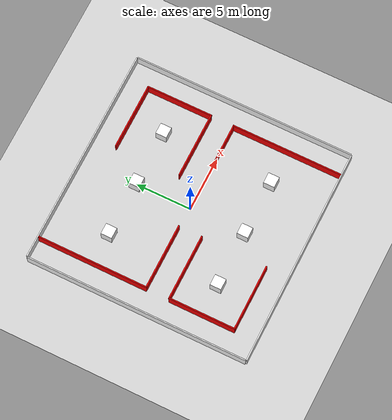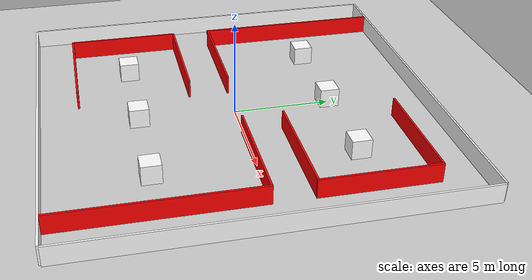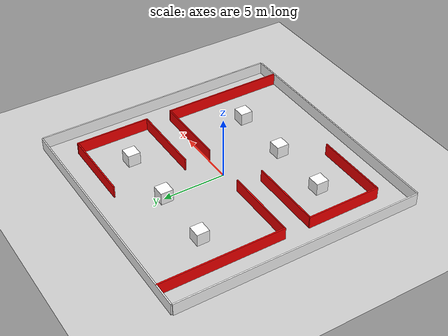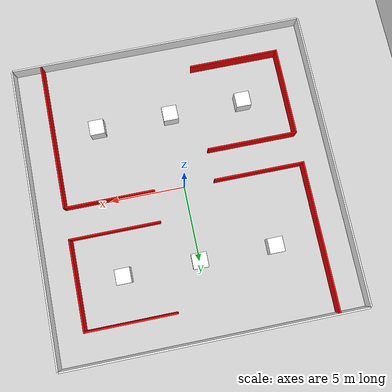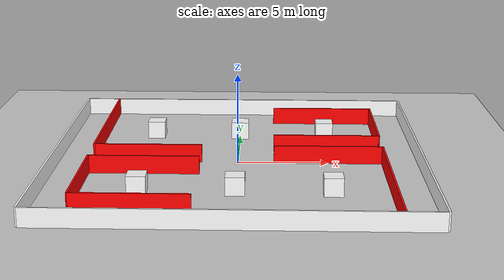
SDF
<?xml version="1.0" ?>
<sdf version="1.11">

  <world name="shapes">
    <physics name='1ms' type='ignored'>
      <max_step_size>0.001</max_step_size>
      <real_time_factor>1</real_time_factor>
      <real_time_update_rate>1000</real_time_update_rate>
    </physics>
    <plugin name='gz::sim::systems::Physics' filename='gz-sim-physics-system'/>
    <plugin name='gz::sim::systems::Sensors' filename='gz-sim-sensors-system'>
      <render_engine>ogre2</render_engine>
    </plugin>
    <plugin filename="gz-sim-imu-system" name="gz::sim::systems::Imu"></plugin>
    <plugin name='gz::sim::systems::SceneBroadcaster' filename='gz-sim-scene-broadcaster-system'/>
    <plugin name='gz::sim::systems::UserCommands' filename='gz-sim-user-commands-system'/>
    <gravity>0 0 -9.8000000000000007</gravity>
    <magnetic_field>5.5644999999999998e-06 2.2875799999999999e-05 -4.2388400000000002e-05</magnetic_field>
    <atmosphere type='adiabatic'/>
    <scene>
      <ambient>0.400000006 0.400000006 0.400000006 1</ambient>
      <background>0.699999988 0.699999988 0.699999988 1</background>
      <shadows>true</shadows>
    </scene>

    <gravity>0 0 -9.8</gravity>

    <light type="directional" name="sun">
      <cast_shadows>true</cast_shadows>
      <pose>0 0 10 0 0 0</pose>
      <diffuse>0.8 0.8 0.8 1</diffuse>
      <specular>0.2 0.2 0.2 1</specular>
      <attenuation>
        <range>1000</range>
        <constant>0.9</constant>
        <linear>0.01</linear>
        <quadratic>0.001</quadratic>
      </attenuation>
      <direction>-0.5 0.1 -0.9</direction>
    </light>

    <model name="ground_plane">
      <static>true</static>
      <link name="link">
        <collision name="collision">
          <geometry>
            <plane>
              <normal>0 0 1</normal>
              <size>100 100</size>
            </plane>
          </geometry>
        </collision>
        <visual name="visual">
          <geometry>
            <plane>
              <normal>0 0 1</normal>
              <size>100 100</size>
            </plane>
          </geometry>
          <material>
            <ambient>0.8 0.8 0.8 1</ambient>
            <diffuse>0.8 0.8 0.8 1</diffuse>
            <specular>0.8 0.8 0.8 1</specular>
          </material>
        </visual>
      </link>
    </model>

    <model name="box1">
      <pose>5.0 -5.0 0.5 0 0 0</pose>
      <link name="box_link">
        <inertial>
          <inertia>
            <ixx>0.16666</ixx>
            <ixy>0</ixy>
            <ixz>0</ixz>
            <iyy>0.16666</iyy>
            <iyz>0</iyz>
            <izz>0.16666</izz>
          </inertia>
          <mass>10.0</mass>
        </inertial>
        <collision name="box_collision">
          <geometry>
            <box>
              <size>1 1 1</size>
            </box>
          </geometry>
        </collision>

        <visual name="box_visual">
          <geometry>
            <box>
              <size>1 1 1</size>
            </box>
          </geometry>
          <material>
            <ambient>1 1 1 1</ambient>
            <diffuse>1 1 1 1</diffuse>
            <specular>1 1 1 1</specular>
          </material>
        </visual>
      </link>
    </model>

    <model name="box2">
      <pose>-5.0 5.0 0.5 0 0 0</pose>
      <link name="box_link">
        <inertial>
          <inertia>
            <ixx>0.16666</ixx>
            <ixy>0</ixy>
            <ixz>0</ixz>
            <iyy>0.16666</iyy>
            <iyz>0</iyz>
            <izz>0.16666</izz>
          </inertia>
          <mass>100.0</mass>
        </inertial>
        <collision name="box_collision">
          <geometry>
            <box>
              <size>1 1 1</size>
            </box>
          </geometry>
        </collision>

        <visual name="box_visual">
          <geometry>
            <box>
              <size>1 1 1</size>
            </box>
          </geometry>
          <material>
            <ambient>1 1 1 1</ambient>
            <diffuse>1 1 1 1</diffuse>
            <specular>1 1 1 1</specular>
          </material>
        </visual>
      </link>
    </model>

    <model name="box3">
      <pose>5.0 5.0 0.5 0 0 0</pose>
      <link name="box_link">
        <inertial>
          <inertia>
            <ixx>0.16666</ixx>
            <ixy>0</ixy>
            <ixz>0</ixz>
            <iyy>0.16666</iyy>
            <iyz>0</iyz>
            <izz>0.16666</izz>
          </inertia>
          <mass>100.0</mass>
        </inertial>
        <collision name="box_collision">
          <geometry>
            <box>
              <size>1 1 1</size>
            </box>
          </geometry>
        </collision>

        <visual name="box_visual">
          <geometry>
            <box>
              <size>1 1 1</size>
            </box>
          </geometry>
          <material>
            <ambient>1 1 1 1</ambient>
            <diffuse>1 1 1 1</diffuse>
            <specular>1 1 1 1</specular>
          </material>
        </visual>
      </link>
    </model>

    <model name="box4">
      <pose>-5.0 -5.0 0.5 0 0 0</pose>
      <link name="box_link">
        <inertial>
          <inertia>
            <ixx>0.16666</ixx>
            <ixy>0</ixy>
            <ixz>0</ixz>
            <iyy>0.16666</iyy>
            <iyz>0</iyz>
            <izz>0.16666</izz>
          </inertia>
          <mass>100.0</mass>
        </inertial>
        <collision name="box_collision">
          <geometry>
            <box>
              <size>1 1 1</size>
            </box>
          </geometry>
        </collision>

        <visual name="box_visual">
          <geometry>
            <box>
              <size>1 1 1</size>
            </box>
          </geometry>
          <material>
            <ambient>1 1 1 1</ambient>
            <diffuse>1 1 1 1</diffuse>
            <specular>1 1 1 1</specular>
          </material>
        </visual>
      </link>
    </model>

    <model name="box5">
      <pose>0.0 -5.0 0.5 0 0 0</pose>
      <link name="box_link">
        <inertial>
          <inertia>
            <ixx>0.16666</ixx>
            <ixy>0</ixy>
            <ixz>0</ixz>
            <iyy>0.16666</iyy>
            <iyz>0</iyz>
            <izz>0.16666</izz>
          </inertia>
          <mass>100.0</mass>
        </inertial>
        <collision name="box_collision">
          <geometry>
            <box>
              <size>1 1 1</size>
            </box>
          </geometry>
        </collision>

        <visual name="box_visual">
          <geometry>
            <box>
              <size>1 1 1</size>
            </box>
          </geometry>
          <material>
            <ambient>1 1 1 1</ambient>
            <diffuse>1 1 1 1</diffuse>
            <specular>1 1 1 1</specular>
          </material>
        </visual>
      </link>
    </model>

    <model name="box6">
      <pose>0.0 5.0 0.5 0 0 0</pose>
      <link name="box_link">
        <inertial>
          <inertia>
            <ixx>0.16666</ixx>
            <ixy>0</ixy>
            <ixz>0</ixz>
            <iyy>0.16666</iyy>
            <iyz>0</iyz>
            <izz>0.16666</izz>
          </inertia>
          <mass>100.0</mass>
        </inertial>
        <collision name="box_collision">
          <geometry>
            <box>
              <size>1 1 1</size>
            </box>
          </geometry>
        </collision>

        <visual name="box_visual">
          <geometry>
            <box>
              <size>1 1 1</size>
            </box>
          </geometry>
          <material>
            <ambient>1 1 1 1</ambient>
            <diffuse>1 1 1 1</diffuse>
            <specular>1 1 1 1</specular>
          </material>
        </visual>
      </link>
    </model>

    <model name="east_wall">
      <static>true</static>
      <pose>0 -10.0 0.5 0 0 0</pose>
      <link name="box_link">
        <inertial>
          <inertia>
            <ixx>0.16666</ixx>
            <ixy>0</ixy>
            <ixz>0</ixz>
            <iyy>0.16666</iyy>
            <iyz>0</iyz>
            <izz>0.16666</izz>
          </inertia>
          <mass>100.0</mass>
        </inertial>
        <collision name="box_collision">
          <geometry>
            <box>
              <size>19.9 0.1 1</size>
            </box>
          </geometry>
        </collision>

        <visual name="box_visual">
          <geometry>
            <box>
              <size>19.9 0.1 1</size>
            </box>
          </geometry>
          <material>
            <ambient>1 1 1 1</ambient>
            <diffuse>1 1 1 1</diffuse>
            <specular>1 1 1 1</specular>
          </material>
        </visual>
      </link>
    </model>

    <model name="west_wall">
      <static>true</static>
      <pose>0 10.0 0.5 0 0 0</pose>
      <link name="box_link">
        <inertial>
          <inertia>
            <ixx>0.16666</ixx>
            <ixy>0</ixy>
            <ixz>0</ixz>
            <iyy>0.16666</iyy>
            <iyz>0</iyz>
            <izz>0.16666</izz>
          </inertia>
          <mass>100.0</mass>
        </inertial>
        <collision name="box_collision">
          <geometry>
            <box>
              <size>19.9 0.1 1</size>
            </box>
          </geometry>
        </collision>

        <visual name="box_visual">
          <geometry>
            <box>
              <size>19.9 0.1 1</size>
            </box>
          </geometry>
          <material>
            <ambient>1 1 1 1</ambient>
            <diffuse>1 1 1 1</diffuse>
            <specular>1 1 1 1</specular>
          </material>
        </visual>
      </link>
    </model>

    <model name="north_wall">
      <static>true</static>
      <pose>10.0 0.0 0.5 0 0 0</pose>
      <link name="box_link">
        <inertial>
          <inertia>
            <ixx>0.16666</ixx>
            <ixy>0</ixy>
            <ixz>0</ixz>
            <iyy>0.16666</iyy>
            <iyz>0</iyz>
            <izz>0.16666</izz>
          </inertia>
          <mass>100.0</mass>
        </inertial>
        <collision name="box_collision">
          <geometry>
            <box>
              <size>0.1 19.9 1</size>
            </box>
          </geometry>
        </collision>

        <visual name="box_visual">
          <geometry>
            <box>
              <size>0.1 19.9 1</size>
            </box>
          </geometry>
          <material>
            <ambient>1 1 1 1</ambient>
            <diffuse>1 1 1 1</diffuse>
            <specular>1 1 1 1</specular>
          </material>
        </visual>
      </link>
    </model>

    <model name="south_wall">
      <static>true</static>
      <pose>-10.0 0.0 0.5 0 0 0</pose>
      <link name="box_link">
        <inertial>
          <inertia>
            <ixx>0.16666</ixx>
            <ixy>0</ixy>
            <ixz>0</ixz>
            <iyy>0.16666</iyy>
            <iyz>0</iyz>
            <izz>0.16666</izz>
          </inertia>
          <mass>100.0</mass>
        </inertial>
        <collision name="box_collision">
          <geometry>
            <box>
              <size>0.1 19.9 1</size>
            </box>
          </geometry>
        </collision>

        <visual name="box_visual">
          <geometry>
            <box>
              <size>0.1 19.9 1</size>
            </box>
          </geometry>
          <material>
            <ambient>1 1 1 1</ambient>
            <diffuse>1 1 1 1</diffuse>
            <specular>1 1 1 1</specular>
          </material>
        </visual>
      </link>
    </model>

    <model name="wall_1ew">
      <static>true</static>
      <pose>-8.0 5.0 0.5 0 0 0</pose>
      <link name="box_link">
        <inertial>
          <inertia>
            <ixx>0.16666</ixx>
            <ixy>0</ixy>
            <ixz>0</ixz>
            <iyy>0.16666</iyy>
            <iyz>0</iyz>
            <izz>0.16666</izz>
          </inertia>
          <mass>100.0</mass>
        </inertial>
        <collision name="box_collision">
          <geometry>
            <box>
              <size>0.1 10.0 1</size>
            </box>
          </geometry>
        </collision>

        <visual name="box_visual">
          <geometry>
            <box>
              <size>0.1 10.0 1</size>
            </box>
          </geometry>
          <material>
            <ambient>1 0 0 1</ambient>
            <diffuse>1 0 0 1</diffuse>
            <specular>1 0 0 1</specular>
          </material>
        </visual>
      </link>
    </model>

    <model name="wall_2we">
      <static>true</static>
      <pose>-8.0 -5.0 0.5 0 0 0</pose>
      <link name="box_link">
        <inertial>
          <inertia>
            <ixx>0.16666</ixx>
            <ixy>0</ixy>
            <ixz>0</ixz>
            <iyy>0.16666</iyy>
            <iyz>0</iyz>
            <izz>0.16666</izz>
          </inertia>
          <mass>100.0</mass>
        </inertial>
        <collision name="box_collision">
          <geometry>
            <box>
              <size>0.1 6.0 1</size>
            </box>
          </geometry>
        </collision>

        <visual name="box_visual">
          <geometry>
            <box>
              <size>0.1 6.0 1</size>
            </box>
          </geometry>
          <material>
            <ambient>1 0 0 1</ambient>
            <diffuse>1 0 0 1</diffuse>
            <specular>1 0 0 1</specular>
          </material>
        </visual>
      </link>
    </model>

    <model name="wall_1ns">
      <static>true</static>
      <pose>-5.0 0.05 0.5 0 0 0</pose>
      <link name="box_link">
        <inertial>
          <inertia>
            <ixx>0.16666</ixx>
            <ixy>0</ixy>
            <ixz>0</ixz>
            <iyy>0.16666</iyy>
            <iyz>0</iyz>
            <izz>0.16666</izz>
          </inertia>
          <mass>100.0</mass>
        </inertial>
        <collision name="box_collision">
          <geometry>
            <box>
              <size>6.0 0.1 1</size>
            </box>
          </geometry>
        </collision>

        <visual name="box_visual">
          <geometry>
            <box>
              <size>6.0 0.1 1</size>
            </box>
          </geometry>
          <material>
            <ambient>1 0 0 1</ambient>
            <diffuse>1 0 0 1</diffuse>
            <specular>1 0 0 1</specular>
          </material>
        </visual>
      </link>
    </model>

    <model name="wall_2ns">
      <static>true</static>
      <pose>-5.0 -2.05 0.5 0 0 0</pose>
      <link name="box_link">
        <inertial>
          <inertia>
            <ixx>0.16666</ixx>
            <ixy>0</ixy>
            <ixz>0</ixz>
            <iyy>0.16666</iyy>
            <iyz>0</iyz>
            <izz>0.16666</izz>
          </inertia>
          <mass>100.0</mass>
        </inertial>
        <collision name="box_collision">
          <geometry>
            <box>
              <size>6.0 0.1 1</size>
            </box>
          </geometry>
        </collision>

        <visual name="box_visual">
          <geometry>
            <box>
              <size>6.0 0.1 1</size>
            </box>
          </geometry>
          <material>
            <ambient>1 0 0 1</ambient>
            <diffuse>1 0 0 1</diffuse>
            <specular>1 0 0 1</specular>
          </material>
        </visual>
      </link>
    </model>

    <model name="wall_3ns">
      <static>true</static>
      <pose>-5.0 -7.95 0.5 0 0 0</pose>
      <link name="box_link">
        <inertial>
          <inertia>
            <ixx>0.16666</ixx>
            <ixy>0</ixy>
            <ixz>0</ixz>
            <iyy>0.16666</iyy>
            <iyz>0</iyz>
            <izz>0.16666</izz>
          </inertia>
          <mass>100.0</mass>
        </inertial>
        <collision name="box_collision">
          <geometry>
            <box>
              <size>6.0 0.1 1</size>
            </box>
          </geometry>
        </collision>

        <visual name="box_visual">
          <geometry>
            <box>
              <size>6.0 0.1 1</size>
            </box>
          </geometry>
          <material>
            <ambient>1 0 0 1</ambient>
            <diffuse>1 0 0 1</diffuse>
            <specular>1 0 0 1</specular>
          </material>
        </visual>
      </link>
    </model>

    <model name="wall_1ew_mirror">
      <static>true</static>
      <pose>8.0 -5.0 0.5 0 0 0</pose>
      <link name="box_link">
        <inertial>
          <inertia>
            <ixx>0.16666</ixx>
            <ixy>0</ixy>
            <ixz>0</ixz>
            <iyy>0.16666</iyy>
            <iyz>0</iyz>
            <izz>0.16666</izz>
          </inertia>
          <mass>100.0</mass>
        </inertial>
        <collision name="box_collision">
          <geometry>
            <box>
              <size>0.1 10.0 1</size>
            </box>
          </geometry>
        </collision>

        <visual name="box_visual">
          <geometry>
            <box>
              <size>0.1 10.0 1</size>
            </box>
          </geometry>
          <material>
            <ambient>1 0 0 1</ambient>
            <diffuse>1 0 0 1</diffuse>
            <specular>1 0 0 1</specular>
          </material>
        </visual>
      </link>
    </model>

    <model name="wall_2we_mirror">
      <static>true</static>
      <pose>8.0 5.0 0.5 0 0 0</pose>
      <link name="box_link">
        <inertial>
          <inertia>
            <ixx>0.16666</ixx>
            <ixy>0</ixy>
            <ixz>0</ixz>
            <iyy>0.16666</iyy>
            <iyz>0</iyz>
            <izz>0.16666</izz>
          </inertia>
          <mass>100.0</mass>
        </inertial>
        <collision name="box_collision">
          <geometry>
            <box>
              <size>0.1 6.0 1</size>
            </box>
          </geometry>
        </collision>

        <visual name="box_visual">
          <geometry>
            <box>
              <size>0.1 6.0 1</size>
            </box>
          </geometry>
          <material>
            <ambient>1 0 0 1</ambient>
            <diffuse>1 0 0 1</diffuse>
            <specular>1 0 0 1</specular>
          </material>
        </visual>
      </link>
    </model>

    <model name="wall_1ns_mirror">
      <static>true</static>
      <pose>5.0 -0.05 0.5 0 0 0</pose>
      <link name="box_link">
        <inertial>
          <inertia>
            <ixx>0.16666</ixx>
            <ixy>0</ixy>
            <ixz>0</ixz>
            <iyy>0.16666</iyy>
            <iyz>0</iyz>
            <izz>0.16666</izz>
          </inertia>
          <mass>100.0</mass>
        </inertial>
        <collision name="box_collision">
          <geometry>
            <box>
              <size>6.0 0.1 1</size>
            </box>
          </geometry>
        </collision>

        <visual name="box_visual">
          <geometry>
            <box>
              <size>6.0 0.1 1</size>
            </box>
          </geometry>
          <material>
            <ambient>1 0 0 1</ambient>
            <diffuse>1 0 0 1</diffuse>
            <specular>1 0 0 1</specular>
          </material>
        </visual>
      </link>
    </model>

    <model name="wall_2ns_mirror">
      <static>true</static>
      <pose>5.0 2.05 0.5 0 0 0</pose>
      <link name="box_link">
        <inertial>
          <inertia>
            <ixx>0.16666</ixx>
            <ixy>0</ixy>
            <ixz>0</ixz>
            <iyy>0.16666</iyy>
            <iyz>0</iyz>
            <izz>0.16666</izz>
          </inertia>
          <mass>100.0</mass>
        </inertial>
        <collision name="box_collision">
          <geometry>
            <box>
              <size>6.0 0.1 1</size>
            </box>
          </geometry>
        </collision>

        <visual name="box_visual">
          <geometry>
            <box>
              <size>6.0 0.1 1</size>
            </box>
          </geometry>
          <material>
            <ambient>1 0 0 1</ambient>
            <diffuse>1 0 0 1</diffuse>
            <specular>1 0 0 1</specular>
          </material>
        </visual>
      </link>
    </model>

    <model name="wall_3ns_mirror">
      <static>true</static>
      <pose>5.0 7.95 0.5 0 0 0</pose>
      <link name="box_link">
        <inertial>
          <inertia>
            <ixx>0.16666</ixx>
            <ixy>0</ixy>
            <ixz>0</ixz>
            <iyy>0.16666</iyy>
            <iyz>0</iyz>
            <izz>0.16666</izz>
          </inertia>
          <mass>100.0</mass>
        </inertial>
        <collision name="box_collision">
          <geometry>
            <box>
              <size>6.0 0.1 1</size>
            </box>
          </geometry>
        </collision>

        <visual name="box_visual">
          <geometry>
            <box>
              <size>6.0 0.1 1</size>
            </box>
          </geometry>
          <material>
            <ambient>1 0 0 1</ambient>
            <diffuse>1 0 0 1</diffuse>
            <specular>1 0 0 1</specular>
          </material>
        </visual>
      </link>
    </model>

  </world>
</sdf>
